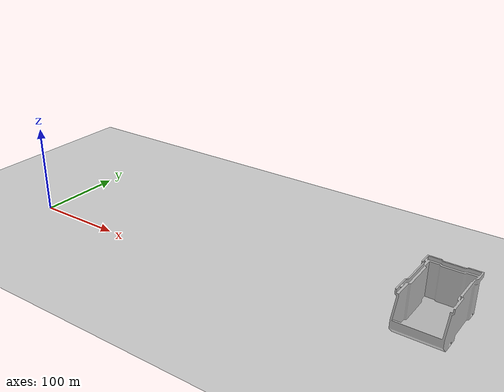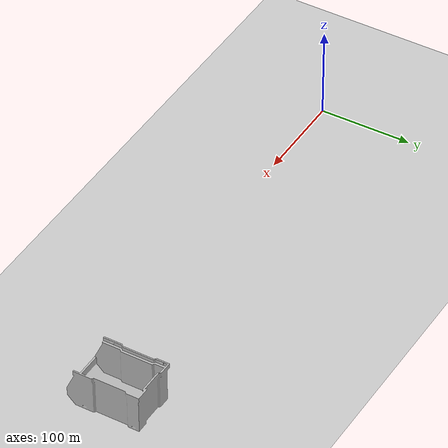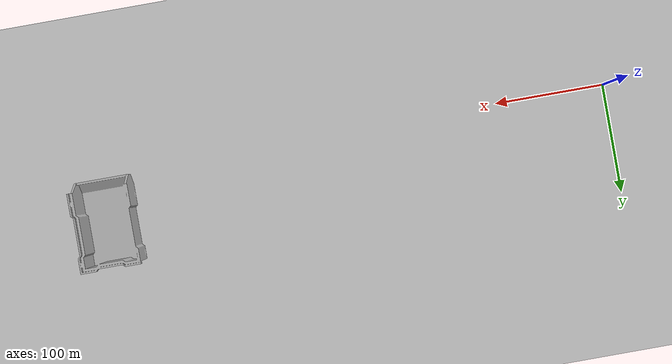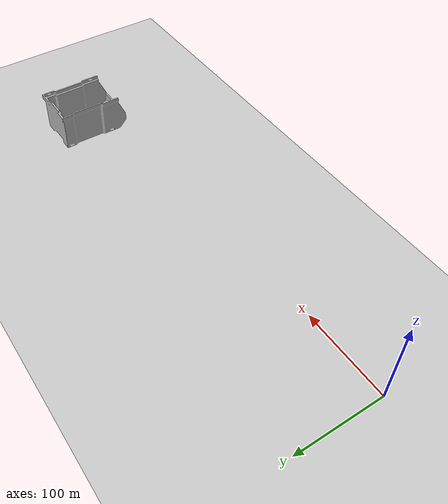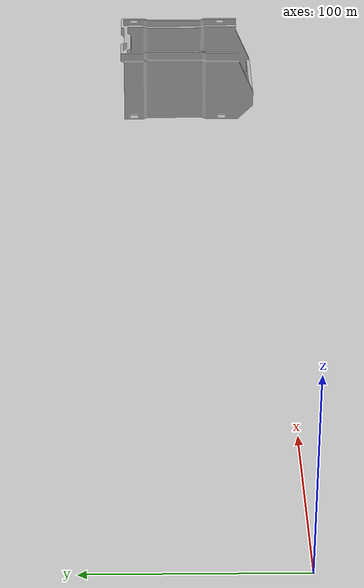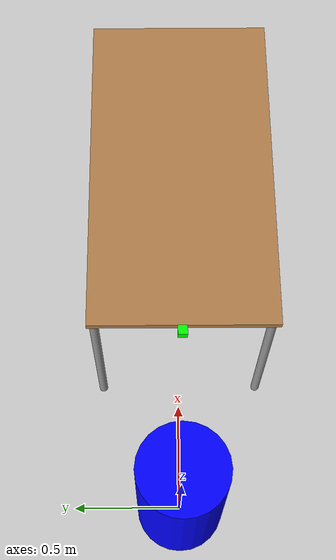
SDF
<sdf version="1.7">
 <world name="default">
  <light name="sun" type="directional">
   <pose>0 0 10 0 -0 0</pose>
   <diffuse>0.8 0.8 0.8 1</diffuse>
   <specular>0.2 0.2 0.2 1</specular>
   <attenuation>
    <range>1000</range>
    <constant>0.9</constant>
    <linear>0.01</linear>
    <quadratic>0.001</quadratic>
   </attenuation>
   <direction>-0.5 0.1 -0.9</direction>
   <spot><inner_angle>0</inner_angle><outer_angle>0</outer_angle><falloff>0</falloff></spot>
  </light>
  <model name="ground_plane">
   <static>1</static>
   <link name="link">
    <collision name="collision">
     <geometry><plane><normal>0 0 1</normal><size>100 100</size></plane></geometry>
     <surface><friction><ode><mu>100</mu><mu2>50</mu2></ode></friction></surface>
    </collision>
    <visual name="visual">
     <cast_shadows>0</cast_shadows>
     <geometry><plane><normal>0 0 1</normal><size>100 100</size></plane></geometry>
     <material>
      <script><uri>file://media/materials/scripts/gazebo.material</uri><name>Gazebo/Grey</name></script>
     </material>
    </visual>
   </link>
  </model>
  <gravity>0 0 -9.8</gravity>
  <magnetic_field>6e-06 2.3e-05 -4.2e-05</magnetic_field>
  <atmosphere type="adiabatic"/>
  <physics type="ode">
   <max_step_size>0.001</max_step_size>
   <real_time_factor>1</real_time_factor>
   <real_time_update_rate>1000</real_time_update_rate>
  </physics>
  <scene><ambient>0.4 0.4 0.4 1</ambient><background>0.7 0.7 0.7 1</background><shadows>1</shadows></scene>
  <audio><device>default</device></audio>
  <spherical_coordinates>
   <surface_model>EARTH_WGS84</surface_model>
   <latitude_deg>0</latitude_deg>
   <longitude_deg>0</longitude_deg>
   <elevation>0</elevation>
   <heading_deg>0</heading_deg>
  </spherical_coordinates>
  <model name="table">
   <static>1</static>
   <link name="link">
    <collision name="surface">
     <pose>0 0 1 0 -0 0</pose>
     <geometry><box><size>1.5 0.8 0.03</size></box></geometry>
     <surface><friction><ode><mu>0.6</mu><mu2>0.6</mu2></ode></friction></surface>
    </collision>
    <visual name="visual1">
     <pose>0 0 1 0 -0 0</pose>
     <geometry><box><size>1.5 0.8 0.03</size></box></geometry>
     <material>
      <script><uri>file://media/materials/scripts/gazebo.material</uri><name>Gazebo/Wood</name></script>
     </material>
    </visual>
    <collision name="front_left_leg">
     <pose>0.68 0.38 0.5 0 -0 0</pose>
     <geometry><cylinder><radius>0.02</radius><length>1</length></cylinder></geometry>
    </collision>
    <visual name="front_left_leg">
     <pose>0.68 0.38 0.5 0 -0 0</pose>
     <geometry><cylinder><radius>0.02</radius><length>1</length></cylinder></geometry>
     <material>
      <script><uri>file://media/materials/scripts/gazebo.material</uri><name>Gazebo/Grey</name></script>
     </material>
    </visual>
    <collision name="front_right_leg">
     <pose>0.68 -0.38 0.5 0 -0 0</pose>
     <geometry><cylinder><radius>0.02</radius><length>1</length></cylinder></geometry>
    </collision>
    <visual name="front_right_leg">
     <pose>0.68 -0.38 0.5 0 -0 0</pose>
     <geometry><cylinder><radius>0.02</radius><length>1</length></cylinder></geometry>
     <material>
      <script><uri>file://media/materials/scripts/gazebo.material</uri><name>Gazebo/Grey</name></script>
     </material>
    </visual>
    <collision name="back_right_leg">
     <pose>-0.68 -0.38 0.5 0 -0 0</pose>
     <geometry><cylinder><radius>0.02</radius><length>1</length></cylinder></geometry>
    </collision>
    <visual name="back_right_leg">
     <pose>-0.68 -0.38 0.5 0 -0 0</pose>
     <geometry><cylinder><radius>0.02</radius><length>1</length></cylinder></geometry>
     <material>
      <script><uri>file://media/materials/scripts/gazebo.material</uri><name>Gazebo/Grey</name></script>
     </material>
    </visual>
    <collision name="back_left_leg">
     <pose>-0.68 0.38 0.5 0 -0 0</pose>
     <geometry><cylinder><radius>0.02</radius><length>1</length></cylinder></geometry>
    </collision>
    <visual name="back_left_leg">
     <pose>-0.68 0.38 0.5 0 -0 0</pose>
     <geometry><cylinder><radius>0.02</radius><length>1</length></cylinder></geometry>
     <material>
      <script><uri>file://media/materials/scripts/gazebo.material</uri><name>Gazebo/Grey</name></script>
     </material>
    </visual>
   </link>
   <pose>1.28665 -0.00699 0 0 -0 0</pose>
  </model>
  <model name="basement">
   <link name="link_0">
    <inertial>
     <mass>1</mass>
     <inertia><ixx>0.145833</ixx><ixy>0</ixy><ixz>0</ixz><iyy>0.145833</iyy><iyz>0</iyz><izz>0.125</izz></inertia>
    </inertial>
    <visual name="visual">
     <geometry><cylinder><radius>0.2</radius><length>0.8</length></cylinder></geometry>
     <material>
      <lighting>1</lighting>
      <script><uri>file://media/materials/scripts/gazebo.material</uri><name>Gazebo/Grey</name></script>
      <shader type="pixel"><normal_map>__default__</normal_map></shader>
      <ambient>0 0 1 1</ambient>
      <diffuse>0.7 0.7 0.7 1</diffuse>
      <specular>0.01 0.01 0.01 1</specular>
      <emissive>0 0 0 1</emissive>
     </material>
    </visual>
    <collision name="collision">
     <geometry><cylinder><radius>0.2</radius><length>0.8</length></cylinder></geometry>
     <surface>
      <friction>
       <ode><mu>1</mu><mu2>1</mu2><fdir1>0 0 0</fdir1><slip1>0</slip1><slip2>0</slip2></ode>
       <torsional>
        <coefficient>1</coefficient>
        <patch_radius>0</patch_radius>
        <surface_radius>0</surface_radius>
        <use_patch_radius>1</use_patch_radius>
        <ode><slip>0</slip></ode>
       </torsional>
      </friction>
      <bounce><restitution_coefficient>0</restitution_coefficient><threshold>1e+06</threshold></bounce>
      <contact>
       <collide_without_contact>0</collide_without_contact>
       <collide_without_contact_bitmask>1</collide_without_contact_bitmask>
       <collide_bitmask>1</collide_bitmask>
       <ode>
        <soft_cfm>0</soft_cfm>
        <soft_erp>0.2</soft_erp>
        <kp>1e+13</kp>
        <kd>1</kd>
        <max_vel>0.01</max_vel>
        <min_depth>0</min_depth>
       </ode>
       <bullet>
        <split_impulse>1</split_impulse>
        <split_impulse_penetration_threshold>-0.01</split_impulse_penetration_threshold>
        <soft_cfm>0</soft_cfm>
        <soft_erp>0.2</soft_erp>
        <kp>1e+13</kp>
        <kd>1</kd>
       </bullet>
      </contact>
     </surface>
    </collision>
   </link>
   <static>0</static>
   <pose>0 0 0.4 0 -0 0</pose>
  </model>
  <model name="cube_pick">
   <link name="link_1">
    <inertial>
     <mass>1</mass>
     <inertia>
      <ixx>0.166667</ixx>
      <ixy>0</ixy>
      <ixz>0</ixz>
      <iyy>0.166667</iyy>
      <iyz>0</iyz>
      <izz>0.166667</izz>
     </inertia>
    </inertial>
    <visual name="visual">
     <geometry><box><size>0.04 0.04 0.04</size></box></geometry>
     <material>
      <lighting>1</lighting>
      <script><uri>file://media/materials/scripts/gazebo.material</uri><name>Gazebo/Grey</name></script>
      <shader type="pixel"><normal_map>__default__</normal_map></shader>
      <ambient>0 1 0 1</ambient>
      <diffuse>0.7 0.7 0.7 1</diffuse>
      <specular>0.01 0.01 0.01 1</specular>
      <emissive>0 0 0 1</emissive>
     </material>
    </visual>
    <collision name="collision">
     <geometry><box><size>0.04 0.04 0.04</size></box></geometry>
     <surface>
      <friction>
       <ode><mu>1</mu><mu2>1</mu2><fdir1>0 0 0</fdir1><slip1>0</slip1><slip2>0</slip2></ode>
       <torsional>
        <coefficient>1</coefficient>
        <patch_radius>0</patch_radius>
        <surface_radius>0</surface_radius>
        <use_patch_radius>1</use_patch_radius>
        <ode><slip>0</slip></ode>
       </torsional>
      </friction>
      <bounce><restitution_coefficient>0</restitution_coefficient><threshold>1e+06</threshold></bounce>
      <contact>
       <collide_without_contact>0</collide_without_contact>
       <collide_without_contact_bitmask>1</collide_without_contact_bitmask>
       <collide_bitmask>1</collide_bitmask>
       <ode>
        <soft_cfm>0</soft_cfm>
        <soft_erp>0.2</soft_erp>
        <kp>1e+13</kp>
        <kd>1</kd>
        <max_vel>0.01</max_vel>
        <min_depth>0</min_depth>
       </ode>
       <bullet>
        <split_impulse>1</split_impulse>
        <split_impulse_penetration_threshold>-0.01</split_impulse_penetration_threshold>
        <soft_cfm>0</soft_cfm>
        <soft_erp>0.2</soft_erp>
        <kp>1e+13</kp>
        <kd>1</kd>
       </bullet>
      </contact>
     </surface>
    </collision>
   </link>
   <static>0</static>
   <pose>0.5 0 1.04 0 -0 0</pose>
  </model>
  <model name="mini_stacking_box">
   <static>0</static>
   <link name="link">
    <inertial>
     <mass>1</mass>
     <inertia>
      <ixx>0.07155</ixx>
      <iyy>0.041175</iyy>
      <izz>0.078975</izz>
      <ixy>0</ixy>
      <ixz>0</ixz>
      <iyz>0</iyz>
     </inertia>
    </inertial>
    <visual name="visual">
     <geometry>
      <mesh><uri>model://mini_stacking_box/meshes/mini_stacking_box.dae</uri><scale>1 1 1</scale></mesh>
     </geometry>
     <cast_shadows>0</cast_shadows>
    </visual>
    <collision name="col_bottom">
     <pose>0 0 -0.27 0 -0 0</pose>
     <geometry><box><size>0.5 0.77 0.01</size></box></geometry>
    </collision>
   </link>
   <pose>1.91417 0.547996 0 0 -0 0</pose>
  </model>
  <plugin name="gazebo_link_attacher" filename="libgazebo_link_attacher.so"/>
 </world>
</sdf>
